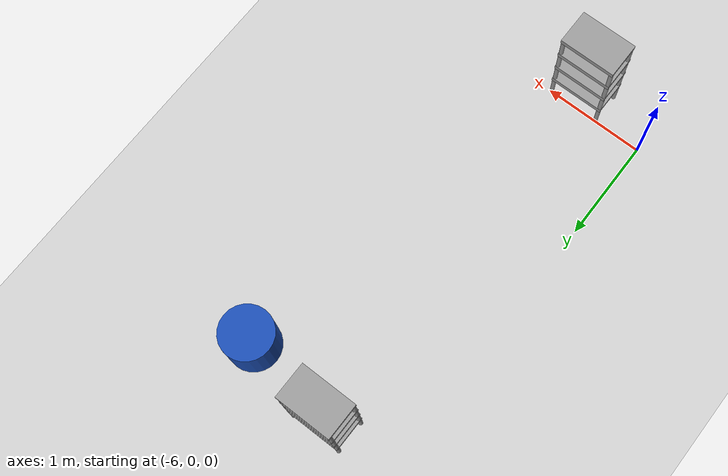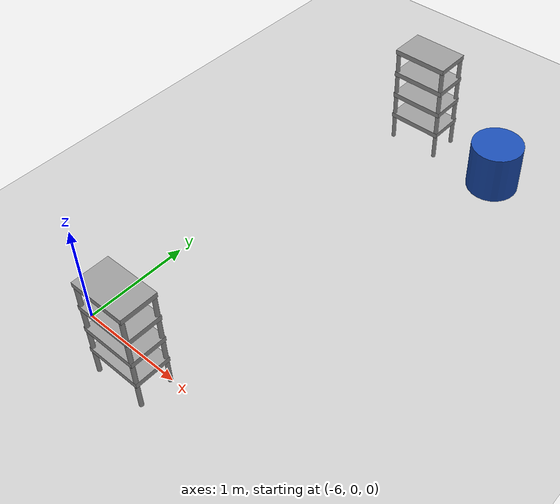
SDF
<sdf version="1.7">
 <world name="default">
  <model name="ground_plane">
   <static>1</static>
   <link name="link">
    <collision name="collision">
     <geometry><plane><normal>0 0 1</normal><size>100 100</size></plane></geometry>
     <surface>
      <contact><collide_bitmask>65535</collide_bitmask></contact>
      <friction><ode><mu>100</mu><mu2>50</mu2></ode></friction>
     </surface>
    </collision>
    <visual name="visual">
     <cast_shadows>0</cast_shadows>
     <geometry><plane><normal>0 0 1</normal><size>100 100</size></plane></geometry>
     <material>
      <script><uri>file://media/materials/scripts/gazebo.material</uri><name>Gazebo/Grey</name></script>
     </material>
    </visual>
   </link>
  </model>
  <model name="chair2_clone_2">
   <link name="link">
    <inertial>
     <mass>1</mass>
     <inertia><ixx>0.145833</ixx><ixy>0</ixy><ixz>0</ixz><iyy>0.145833</iyy><iyz>0</iyz><izz>0.125</izz></inertia>
    </inertial>
    <visual name="visual">
     <geometry><cylinder><radius>0.25</radius><length>0.5</length></cylinder></geometry>
     <material>
      <script><name>Gazebo/Grey</name><uri>file://media/materials/scripts/gazebo.material</uri></script>
      <shader type="pixel"><normal_map>__default__</normal_map></shader>
      <ambient>0.1 0.3 0.7 1</ambient>
      <diffuse>0.7 0.7 0.7 1</diffuse>
      <specular>0.01 0.01 0.01 1</specular>
      <emissive>0 0 0 1</emissive>
     </material>
    </visual>
    <collision name="collision">
     <geometry><cylinder><radius>0.25</radius><length>0.5</length></cylinder></geometry>
     <surface>
      <friction>
       <ode><mu>1</mu><mu2>1</mu2><fdir1>0 0 0</fdir1><slip1>0</slip1><slip2>0</slip2></ode>
       <torsional>
        <coefficient>1</coefficient>
        <patch_radius>0</patch_radius>
        <surface_radius>0</surface_radius>
        <use_patch_radius>1</use_patch_radius>
        <ode><slip>0</slip></ode>
       </torsional>
      </friction>
      <bounce><restitution_coefficient>0</restitution_coefficient><threshold>1e+06</threshold></bounce>
      <contact>
       <collide_without_contact>0</collide_without_contact>
       <collide_without_contact_bitmask>1</collide_without_contact_bitmask>
       <collide_bitmask>1</collide_bitmask>
       <ode>
        <soft_cfm>0</soft_cfm>
        <soft_erp>0.2</soft_erp>
        <kp>1e+13</kp>
        <kd>1</kd>
        <max_vel>0.01</max_vel>
        <min_depth>0</min_depth>
       </ode>
       <bullet>
        <split_impulse>1</split_impulse>
        <split_impulse_penetration_threshold>-0.01</split_impulse_penetration_threshold>
        <soft_cfm>0</soft_cfm>
        <soft_erp>0.2</soft_erp>
        <kp>1e+13</kp>
        <kd>1</kd>
       </bullet>
      </contact>
     </surface>
    </collision>
   </link>
   <static>1</static>
   <pose>-4.35825 3.56614 0.25 0 -0 0</pose>
  </model>
  <model name="Shelf">
   <link name="link">
    <inertial>
     <mass>1</mass>
     <inertia><ixx>0.145833</ixx><ixy>0</ixy><ixz>0</ixz><iyy>0.145833</iyy><iyz>0</iyz><izz>0.125</izz></inertia>
    </inertial>
    <visual name="visual">
     <geometry><cylinder><radius>0.02</radius><length>1</length></cylinder></geometry>
     <material>
      <script><name>Gazebo/Grey</name><uri>file://media/materials/scripts/gazebo.material</uri></script>
      <shader type="pixel"><normal_map>__default__</normal_map></shader>
      <ambient>0.3 0.3 0.3 1</ambient>
      <diffuse>0 0 0 1</diffuse>
      <specular>0.01 0.01 0.01 1</specular>
      <emissive>0 0 0 1</emissive>
     </material>
    </visual>
    <collision name="collision">
     <geometry><cylinder><radius>0.02</radius><length>1</length></cylinder></geometry>
     <surface>
      <friction>
       <ode><mu>1</mu><mu2>1</mu2><fdir1>0 0 0</fdir1><slip1>0</slip1><slip2>0</slip2></ode>
       <torsional>
        <coefficient>1</coefficient>
        <patch_radius>0</patch_radius>
        <surface_radius>0</surface_radius>
        <use_patch_radius>1</use_patch_radius>
        <ode><slip>0</slip></ode>
       </torsional>
      </friction>
      <bounce><restitution_coefficient>0</restitution_coefficient><threshold>1e+06</threshold></bounce>
      <contact>
       <collide_without_contact>0</collide_without_contact>
       <collide_without_contact_bitmask>1</collide_without_contact_bitmask>
       <collide_bitmask>1</collide_bitmask>
       <ode>
        <soft_cfm>0</soft_cfm>
        <soft_erp>0.2</soft_erp>
        <kp>1e+13</kp>
        <kd>1</kd>
        <max_vel>0.01</max_vel>
        <min_depth>0</min_depth>
       </ode>
       <bullet>
        <split_impulse>1</split_impulse>
        <split_impulse_penetration_threshold>-0.01</split_impulse_penetration_threshold>
        <soft_cfm>0</soft_cfm>
        <soft_erp>0.2</soft_erp>
        <kp>1e+13</kp>
        <kd>1</kd>
       </bullet>
      </contact>
     </surface>
    </collision>
   </link>
   <link name="link_25">
    <inertial>
     <mass>1</mass>
     <inertia>
      <ixx>0.166667</ixx>
      <ixy>0</ixy>
      <ixz>0</ixz>
      <iyy>0.166667</iyy>
      <iyz>0</iyz>
      <izz>0.166667</izz>
     </inertia>
    </inertial>
    <pose>0.25 0.15 0.525 0 -0 0</pose>
    <visual name="visual">
     <geometry><box><size>0.54 0.34 0.05</size></box></geometry>
     <material>
      <lighting>1</lighting>
      <script><uri>file://media/materials/scripts/gazebo.material</uri><name>Gazebo/Grey</name></script>
      <shader type="pixel"><normal_map>__default__</normal_map></shader>
      <ambient>0.3 0.3 0.3 1</ambient>
      <diffuse>0 0 0 1</diffuse>
      <specular>0.01 0.01 0.01 1</specular>
      <emissive>0 0 0 1</emissive>
     </material>
    </visual>
    <collision name="collision">
     <geometry><box><size>0.54 0.34 0.05</size></box></geometry>
     <surface>
      <friction>
       <ode><mu>1</mu><mu2>1</mu2><fdir1>0 0 0</fdir1><slip1>0</slip1><slip2>0</slip2></ode>
       <torsional>
        <coefficient>1</coefficient>
        <patch_radius>0</patch_radius>
        <surface_radius>0</surface_radius>
        <use_patch_radius>1</use_patch_radius>
        <ode><slip>0</slip></ode>
       </torsional>
      </friction>
      <bounce><restitution_coefficient>0</restitution_coefficient><threshold>1e+06</threshold></bounce>
      <contact>
       <collide_without_contact>0</collide_without_contact>
       <collide_without_contact_bitmask>1</collide_without_contact_bitmask>
       <collide_bitmask>1</collide_bitmask>
       <ode>
        <soft_cfm>0</soft_cfm>
        <soft_erp>0.2</soft_erp>
        <kp>1e+13</kp>
        <kd>1</kd>
        <max_vel>0.01</max_vel>
        <min_depth>0</min_depth>
       </ode>
       <bullet>
        <split_impulse>1</split_impulse>
        <split_impulse_penetration_threshold>-0.01</split_impulse_penetration_threshold>
        <soft_cfm>0</soft_cfm>
        <soft_erp>0.2</soft_erp>
        <kp>1e+13</kp>
        <kd>1</kd>
       </bullet>
      </contact>
     </surface>
    </collision>
   </link>
   <link name="link_25_clone">
    <inertial>
     <mass>1</mass>
     <inertia>
      <ixx>0.166667</ixx>
      <ixy>0</ixy>
      <ixz>0</ixz>
      <iyy>0.166667</iyy>
      <iyz>0</iyz>
      <izz>0.166667</izz>
     </inertia>
    </inertial>
    <pose>0.25 0.15 0.275 0 -0 0</pose>
    <visual name="visual">
     <geometry><box><size>0.54 0.34 0.05</size></box></geometry>
     <material>
      <lighting>1</lighting>
      <script><uri>file://media/materials/scripts/gazebo.material</uri><name>Gazebo/Grey</name></script>
      <shader type="pixel"><normal_map>__default__</normal_map></shader>
      <ambient>0.3 0.3 0.3 1</ambient>
      <diffuse>0 0 0 1</diffuse>
      <specular>0.01 0.01 0.01 1</specular>
      <emissive>0 0 0 1</emissive>
     </material>
    </visual>
    <collision name="collision">
     <geometry><box><size>0.54 0.34 0.05</size></box></geometry>
     <surface>
      <friction>
       <ode><mu>1</mu><mu2>1</mu2><fdir1>0 0 0</fdir1><slip1>0</slip1><slip2>0</slip2></ode>
       <torsional>
        <coefficient>1</coefficient>
        <patch_radius>0</patch_radius>
        <surface_radius>0</surface_radius>
        <use_patch_radius>1</use_patch_radius>
        <ode><slip>0</slip></ode>
       </torsional>
      </friction>
      <bounce><restitution_coefficient>0</restitution_coefficient><threshold>1e+06</threshold></bounce>
      <contact>
       <collide_without_contact>0</collide_without_contact>
       <collide_without_contact_bitmask>1</collide_without_contact_bitmask>
       <collide_bitmask>1</collide_bitmask>
       <ode>
        <soft_cfm>0</soft_cfm>
        <soft_erp>0.2</soft_erp>
        <kp>1e+13</kp>
        <kd>1</kd>
        <max_vel>0.01</max_vel>
        <min_depth>0</min_depth>
       </ode>
       <bullet>
        <split_impulse>1</split_impulse>
        <split_impulse_penetration_threshold>-0.01</split_impulse_penetration_threshold>
        <soft_cfm>0</soft_cfm>
        <soft_erp>0.2</soft_erp>
        <kp>1e+13</kp>
        <kd>1</kd>
       </bullet>
      </contact>
     </surface>
    </collision>
   </link>
   <link name="link_25_clone_0">
    <inertial>
     <mass>1</mass>
     <inertia>
      <ixx>0.166667</ixx>
      <ixy>0</ixy>
      <ixz>0</ixz>
      <iyy>0.166667</iyy>
      <iyz>0</iyz>
      <izz>0.166667</izz>
     </inertia>
    </inertial>
    <pose>0.25 0.15 -0.225 0 -0 0</pose>
    <visual name="visual">
     <geometry><box><size>0.54 0.34 0.05</size></box></geometry>
     <material>
      <lighting>1</lighting>
      <script><uri>file://media/materials/scripts/gazebo.material</uri><name>Gazebo/Grey</name></script>
      <shader type="pixel"><normal_map>__default__</normal_map></shader>
      <ambient>0.3 0.3 0.3 1</ambient>
      <diffuse>0 0 0 1</diffuse>
      <specular>0.01 0.01 0.01 1</specular>
      <emissive>0 0 0 1</emissive>
     </material>
    </visual>
    <collision name="collision">
     <geometry><box><size>0.54 0.34 0.05</size></box></geometry>
     <surface>
      <friction>
       <ode><mu>1</mu><mu2>1</mu2><fdir1>0 0 0</fdir1><slip1>0</slip1><slip2>0</slip2></ode>
       <torsional>
        <coefficient>1</coefficient>
        <patch_radius>0</patch_radius>
        <surface_radius>0</surface_radius>
        <use_patch_radius>1</use_patch_radius>
        <ode><slip>0</slip></ode>
       </torsional>
      </friction>
      <bounce><restitution_coefficient>0</restitution_coefficient><threshold>1e+06</threshold></bounce>
      <contact>
       <collide_without_contact>0</collide_without_contact>
       <collide_without_contact_bitmask>1</collide_without_contact_bitmask>
       <collide_bitmask>1</collide_bitmask>
       <ode>
        <soft_cfm>0</soft_cfm>
        <soft_erp>0.2</soft_erp>
        <kp>1e+13</kp>
        <kd>1</kd>
        <max_vel>0.01</max_vel>
        <min_depth>0</min_depth>
       </ode>
       <bullet>
        <split_impulse>1</split_impulse>
        <split_impulse_penetration_threshold>-0.01</split_impulse_penetration_threshold>
        <soft_cfm>0</soft_cfm>
        <soft_erp>0.2</soft_erp>
        <kp>1e+13</kp>
        <kd>1</kd>
       </bullet>
      </contact>
     </surface>
    </collision>
   </link>
   <link name="link_25_clone_1">
    <inertial>
     <mass>1</mass>
     <inertia>
      <ixx>0.166667</ixx>
      <ixy>0</ixy>
      <ixz>0</ixz>
      <iyy>0.166667</iyy>
      <iyz>0</iyz>
      <izz>0.166667</izz>
     </inertia>
    </inertial>
    <pose>0.25 0.15 0.025 0 -0 0</pose>
    <visual name="visual">
     <geometry><box><size>0.54 0.34 0.05</size></box></geometry>
     <material>
      <lighting>1</lighting>
      <script><uri>file://media/materials/scripts/gazebo.material</uri><name>Gazebo/Grey</name></script>
      <shader type="pixel"><normal_map>__default__</normal_map></shader>
      <ambient>0.3 0.3 0.3 1</ambient>
      <diffuse>0 0 0 1</diffuse>
      <specular>0.01 0.01 0.01 1</specular>
      <emissive>0 0 0 1</emissive>
     </material>
    </visual>
    <collision name="collision">
     <geometry><box><size>0.54 0.34 0.05</size></box></geometry>
     <surface>
      <friction>
       <ode><mu>1</mu><mu2>1</mu2><fdir1>0 0 0</fdir1><slip1>0</slip1><slip2>0</slip2></ode>
       <torsional>
        <coefficient>1</coefficient>
        <patch_radius>0</patch_radius>
        <surface_radius>0</surface_radius>
        <use_patch_radius>1</use_patch_radius>
        <ode><slip>0</slip></ode>
       </torsional>
      </friction>
      <bounce><restitution_coefficient>0</restitution_coefficient><threshold>1e+06</threshold></bounce>
      <contact>
       <collide_without_contact>0</collide_without_contact>
       <collide_without_contact_bitmask>1</collide_without_contact_bitmask>
       <collide_bitmask>1</collide_bitmask>
       <ode>
        <soft_cfm>0</soft_cfm>
        <soft_erp>0.2</soft_erp>
        <kp>1e+13</kp>
        <kd>1</kd>
        <max_vel>0.01</max_vel>
        <min_depth>0</min_depth>
       </ode>
       <bullet>
        <split_impulse>1</split_impulse>
        <split_impulse_penetration_threshold>-0.01</split_impulse_penetration_threshold>
        <soft_cfm>0</soft_cfm>
        <soft_erp>0.2</soft_erp>
        <kp>1e+13</kp>
        <kd>1</kd>
       </bullet>
      </contact>
     </surface>
    </collision>
   </link>
   <link name="link_clone">
    <inertial>
     <mass>1</mass>
     <inertia><ixx>0.145833</ixx><ixy>0</ixy><ixz>0</ixz><iyy>0.145833</iyy><iyz>0</iyz><izz>0.125</izz></inertia>
    </inertial>
    <pose>0.5 0.3 0 0 -0 0</pose>
    <visual name="visual">
     <geometry><cylinder><radius>0.02</radius><length>1</length></cylinder></geometry>
     <material>
      <script><name>Gazebo/Grey</name><uri>file://media/materials/scripts/gazebo.material</uri></script>
      <shader type="pixel"><normal_map>__default__</normal_map></shader>
      <ambient>0.3 0.3 0.3 1</ambient>
      <diffuse>0 0 0 1</diffuse>
      <specular>0.01 0.01 0.01 1</specular>
      <emissive>0 0 0 1</emissive>
     </material>
    </visual>
    <collision name="collision">
     <geometry><cylinder><radius>0.02</radius><length>1</length></cylinder></geometry>
     <surface>
      <friction>
       <ode><mu>1</mu><mu2>1</mu2><fdir1>0 0 0</fdir1><slip1>0</slip1><slip2>0</slip2></ode>
       <torsional>
        <coefficient>1</coefficient>
        <patch_radius>0</patch_radius>
        <surface_radius>0</surface_radius>
        <use_patch_radius>1</use_patch_radius>
        <ode><slip>0</slip></ode>
       </torsional>
      </friction>
      <bounce><restitution_coefficient>0</restitution_coefficient><threshold>1e+06</threshold></bounce>
      <contact>
       <collide_without_contact>0</collide_without_contact>
       <collide_without_contact_bitmask>1</collide_without_contact_bitmask>
       <collide_bitmask>1</collide_bitmask>
       <ode>
        <soft_cfm>0</soft_cfm>
        <soft_erp>0.2</soft_erp>
        <kp>1e+13</kp>
        <kd>1</kd>
        <max_vel>0.01</max_vel>
        <min_depth>0</min_depth>
       </ode>
       <bullet>
        <split_impulse>1</split_impulse>
        <split_impulse_penetration_threshold>-0.01</split_impulse_penetration_threshold>
        <soft_cfm>0</soft_cfm>
        <soft_erp>0.2</soft_erp>
        <kp>1e+13</kp>
        <kd>1</kd>
       </bullet>
      </contact>
     </surface>
    </collision>
   </link>
   <link name="link_clone_0">
    <inertial>
     <mass>1</mass>
     <inertia><ixx>0.145833</ixx><ixy>0</ixy><ixz>0</ixz><iyy>0.145833</iyy><iyz>0</iyz><izz>0.125</izz></inertia>
    </inertial>
    <pose>0 0.3 0 0 -0 0</pose>
    <visual name="visual">
     <geometry><cylinder><radius>0.02</radius><length>1</length></cylinder></geometry>
     <material>
      <script><name>Gazebo/Grey</name><uri>file://media/materials/scripts/gazebo.material</uri></script>
      <shader type="pixel"><normal_map>__default__</normal_map></shader>
      <ambient>0.3 0.3 0.3 1</ambient>
      <diffuse>0 0 0 1</diffuse>
      <specular>0.01 0.01 0.01 1</specular>
      <emissive>0 0 0 1</emissive>
     </material>
    </visual>
    <collision name="collision">
     <geometry><cylinder><radius>0.02</radius><length>1</length></cylinder></geometry>
     <surface>
      <friction>
       <ode><mu>1</mu><mu2>1</mu2><fdir1>0 0 0</fdir1><slip1>0</slip1><slip2>0</slip2></ode>
       <torsional>
        <coefficient>1</coefficient>
        <patch_radius>0</patch_radius>
        <surface_radius>0</surface_radius>
        <use_patch_radius>1</use_patch_radius>
        <ode><slip>0</slip></ode>
       </torsional>
      </friction>
      <bounce><restitution_coefficient>0</restitution_coefficient><threshold>1e+06</threshold></bounce>
      <contact>
       <collide_without_contact>0</collide_without_contact>
       <collide_without_contact_bitmask>1</collide_without_contact_bitmask>
       <collide_bitmask>1</collide_bitmask>
       <ode>
        <soft_cfm>0</soft_cfm>
        <soft_erp>0.2</soft_erp>
        <kp>1e+13</kp>
        <kd>1</kd>
        <max_vel>0.01</max_vel>
        <min_depth>0</min_depth>
       </ode>
       <bullet>
        <split_impulse>1</split_impulse>
        <split_impulse_penetration_threshold>-0.01</split_impulse_penetration_threshold>
        <soft_cfm>0</soft_cfm>
        <soft_erp>0.2</soft_erp>
        <kp>1e+13</kp>
        <kd>1</kd>
       </bullet>
      </contact>
     </surface>
    </collision>
   </link>
   <link name="link_clone_1">
    <inertial>
     <mass>1</mass>
     <inertia><ixx>0.145833</ixx><ixy>0</ixy><ixz>0</ixz><iyy>0.145833</iyy><iyz>0</iyz><izz>0.125</izz></inertia>
    </inertial>
    <pose>0.5 0 0 0 -0 0</pose>
    <visual name="visual">
     <geometry><cylinder><radius>0.02</radius><length>1</length></cylinder></geometry>
     <material>
      <script><name>Gazebo/Grey</name><uri>file://media/materials/scripts/gazebo.material</uri></script>
      <shader type="pixel"><normal_map>__default__</normal_map></shader>
      <ambient>0.3 0.3 0.3 1</ambient>
      <diffuse>0 0 0 1</diffuse>
      <specular>0.01 0.01 0.01 1</specular>
      <emissive>0 0 0 1</emissive>
     </material>
    </visual>
    <collision name="collision">
     <geometry><cylinder><radius>0.02</radius><length>1</length></cylinder></geometry>
     <surface>
      <friction>
       <ode><mu>1</mu><mu2>1</mu2><fdir1>0 0 0</fdir1><slip1>0</slip1><slip2>0</slip2></ode>
       <torsional>
        <coefficient>1</coefficient>
        <patch_radius>0</patch_radius>
        <surface_radius>0</surface_radius>
        <use_patch_radius>1</use_patch_radius>
        <ode><slip>0</slip></ode>
       </torsional>
      </friction>
      <bounce><restitution_coefficient>0</restitution_coefficient><threshold>1e+06</threshold></bounce>
      <contact>
       <collide_without_contact>0</collide_without_contact>
       <collide_without_contact_bitmask>1</collide_without_contact_bitmask>
       <collide_bitmask>1</collide_bitmask>
       <ode>
        <soft_cfm>0</soft_cfm>
        <soft_erp>0.2</soft_erp>
        <kp>1e+13</kp>
        <kd>1</kd>
        <max_vel>0.01</max_vel>
        <min_depth>0</min_depth>
       </ode>
       <bullet>
        <split_impulse>1</split_impulse>
        <split_impulse_penetration_threshold>-0.01</split_impulse_penetration_threshold>
        <soft_cfm>0</soft_cfm>
        <soft_erp>0.2</soft_erp>
        <kp>1e+13</kp>
        <kd>1</kd>
       </bullet>
      </contact>
     </surface>
    </collision>
   </link>
   <static>1</static>
   <pose>-5.51831 -0.308607 0.5 0 -0 0</pose>
  </model>
  <model name="Shelf_clone">
   <link name="link">
    <inertial>
     <mass>1</mass>
     <inertia><ixx>0.145833</ixx><ixy>0</ixy><ixz>0</ixz><iyy>0.145833</iyy><iyz>0</iyz><izz>0.125</izz></inertia>
    </inertial>
    <visual name="visual">
     <geometry><cylinder><radius>0.02</radius><length>1</length></cylinder></geometry>
     <material>
      <script><name>Gazebo/Grey</name><uri>file://media/materials/scripts/gazebo.material</uri></script>
      <shader type="pixel"><normal_map>__default__</normal_map></shader>
      <ambient>0.3 0.3 0.3 1</ambient>
      <diffuse>0 0 0 1</diffuse>
      <specular>0.01 0.01 0.01 1</specular>
      <emissive>0 0 0 1</emissive>
     </material>
    </visual>
    <collision name="collision">
     <geometry><cylinder><radius>0.02</radius><length>1</length></cylinder></geometry>
     <surface>
      <friction>
       <ode><mu>1</mu><mu2>1</mu2><fdir1>0 0 0</fdir1><slip1>0</slip1><slip2>0</slip2></ode>
       <torsional>
        <coefficient>1</coefficient>
        <patch_radius>0</patch_radius>
        <surface_radius>0</surface_radius>
        <use_patch_radius>1</use_patch_radius>
        <ode><slip>0</slip></ode>
       </torsional>
      </friction>
      <bounce><restitution_coefficient>0</restitution_coefficient><threshold>1e+06</threshold></bounce>
      <contact>
       <collide_without_contact>0</collide_without_contact>
       <collide_without_contact_bitmask>1</collide_without_contact_bitmask>
       <collide_bitmask>1</collide_bitmask>
       <ode>
        <soft_cfm>0</soft_cfm>
        <soft_erp>0.2</soft_erp>
        <kp>1e+13</kp>
        <kd>1</kd>
        <max_vel>0.01</max_vel>
        <min_depth>0</min_depth>
       </ode>
       <bullet>
        <split_impulse>1</split_impulse>
        <split_impulse_penetration_threshold>-0.01</split_impulse_penetration_threshold>
        <soft_cfm>0</soft_cfm>
        <soft_erp>0.2</soft_erp>
        <kp>1e+13</kp>
        <kd>1</kd>
       </bullet>
      </contact>
     </surface>
    </collision>
   </link>
   <link name="link_25">
    <inertial>
     <mass>1</mass>
     <inertia>
      <ixx>0.166667</ixx>
      <ixy>0</ixy>
      <ixz>0</ixz>
      <iyy>0.166667</iyy>
      <iyz>0</iyz>
      <izz>0.166667</izz>
     </inertia>
    </inertial>
    <pose>0.25 0.15 0.525 0 -0 0</pose>
    <visual name="visual">
     <geometry><box><size>0.54 0.34 0.05</size></box></geometry>
     <material>
      <lighting>1</lighting>
      <script><uri>file://media/materials/scripts/gazebo.material</uri><name>Gazebo/Grey</name></script>
      <shader type="pixel"><normal_map>__default__</normal_map></shader>
      <ambient>0.3 0.3 0.3 1</ambient>
      <diffuse>0 0 0 1</diffuse>
      <specular>0.01 0.01 0.01 1</specular>
      <emissive>0 0 0 1</emissive>
     </material>
    </visual>
    <collision name="collision">
     <geometry><box><size>0.54 0.34 0.05</size></box></geometry>
     <surface>
      <friction>
       <ode><mu>1</mu><mu2>1</mu2><fdir1>0 0 0</fdir1><slip1>0</slip1><slip2>0</slip2></ode>
       <torsional>
        <coefficient>1</coefficient>
        <patch_radius>0</patch_radius>
        <surface_radius>0</surface_radius>
        <use_patch_radius>1</use_patch_radius>
        <ode><slip>0</slip></ode>
       </torsional>
      </friction>
      <bounce><restitution_coefficient>0</restitution_coefficient><threshold>1e+06</threshold></bounce>
      <contact>
       <collide_without_contact>0</collide_without_contact>
       <collide_without_contact_bitmask>1</collide_without_contact_bitmask>
       <collide_bitmask>1</collide_bitmask>
       <ode>
        <soft_cfm>0</soft_cfm>
        <soft_erp>0.2</soft_erp>
        <kp>1e+13</kp>
        <kd>1</kd>
        <max_vel>0.01</max_vel>
        <min_depth>0</min_depth>
       </ode>
       <bullet>
        <split_impulse>1</split_impulse>
        <split_impulse_penetration_threshold>-0.01</split_impulse_penetration_threshold>
        <soft_cfm>0</soft_cfm>
        <soft_erp>0.2</soft_erp>
        <kp>1e+13</kp>
        <kd>1</kd>
       </bullet>
      </contact>
     </surface>
    </collision>
   </link>
   <link name="link_25_clone">
    <inertial>
     <mass>1</mass>
     <inertia>
      <ixx>0.166667</ixx>
      <ixy>0</ixy>
      <ixz>0</ixz>
      <iyy>0.166667</iyy>
      <iyz>0</iyz>
      <izz>0.166667</izz>
     </inertia>
    </inertial>
    <pose>0.25 0.15 0.275 0 -0 0</pose>
    <visual name="visual">
     <geometry><box><size>0.54 0.34 0.05</size></box></geometry>
     <material>
      <lighting>1</lighting>
      <script><uri>file://media/materials/scripts/gazebo.material</uri><name>Gazebo/Grey</name></script>
      <shader type="pixel"><normal_map>__default__</normal_map></shader>
      <ambient>0.3 0.3 0.3 1</ambient>
      <diffuse>0 0 0 1</diffuse>
      <specular>0.01 0.01 0.01 1</specular>
      <emissive>0 0 0 1</emissive>
     </material>
    </visual>
    <collision name="collision">
     <geometry><box><size>0.54 0.34 0.05</size></box></geometry>
     <surface>
      <friction>
       <ode><mu>1</mu><mu2>1</mu2><fdir1>0 0 0</fdir1><slip1>0</slip1><slip2>0</slip2></ode>
       <torsional>
        <coefficient>1</coefficient>
        <patch_radius>0</patch_radius>
        <surface_radius>0</surface_radius>
        <use_patch_radius>1</use_patch_radius>
        <ode><slip>0</slip></ode>
       </torsional>
      </friction>
      <bounce><restitution_coefficient>0</restitution_coefficient><threshold>1e+06</threshold></bounce>
      <contact>
       <collide_without_contact>0</collide_without_contact>
       <collide_without_contact_bitmask>1</collide_without_contact_bitmask>
       <collide_bitmask>1</collide_bitmask>
       <ode>
        <soft_cfm>0</soft_cfm>
        <soft_erp>0.2</soft_erp>
        <kp>1e+13</kp>
        <kd>1</kd>
        <max_vel>0.01</max_vel>
        <min_depth>0</min_depth>
       </ode>
       <bullet>
        <split_impulse>1</split_impulse>
        <split_impulse_penetration_threshold>-0.01</split_impulse_penetration_threshold>
        <soft_cfm>0</soft_cfm>
        <soft_erp>0.2</soft_erp>
        <kp>1e+13</kp>
        <kd>1</kd>
       </bullet>
      </contact>
     </surface>
    </collision>
   </link>
   <link name="link_25_clone_0">
    <inertial>
     <mass>1</mass>
     <inertia>
      <ixx>0.166667</ixx>
      <ixy>0</ixy>
      <ixz>0</ixz>
      <iyy>0.166667</iyy>
      <iyz>0</iyz>
      <izz>0.166667</izz>
     </inertia>
    </inertial>
    <pose>0.25 0.15 -0.225 0 -0 0</pose>
    <visual name="visual">
     <geometry><box><size>0.54 0.34 0.05</size></box></geometry>
     <material>
      <lighting>1</lighting>
      <script><uri>file://media/materials/scripts/gazebo.material</uri><name>Gazebo/Grey</name></script>
      <shader type="pixel"><normal_map>__default__</normal_map></shader>
      <ambient>0.3 0.3 0.3 1</ambient>
      <diffuse>0 0 0 1</diffuse>
      <specular>0.01 0.01 0.01 1</specular>
      <emissive>0 0 0 1</emissive>
     </material>
    </visual>
    <collision name="collision">
     <geometry><box><size>0.54 0.34 0.05</size></box></geometry>
     <surface>
      <friction>
       <ode><mu>1</mu><mu2>1</mu2><fdir1>0 0 0</fdir1><slip1>0</slip1><slip2>0</slip2></ode>
       <torsional>
        <coefficient>1</coefficient>
        <patch_radius>0</patch_radius>
        <surface_radius>0</surface_radius>
        <use_patch_radius>1</use_patch_radius>
        <ode><slip>0</slip></ode>
       </torsional>
      </friction>
      <bounce><restitution_coefficient>0</restitution_coefficient><threshold>1e+06</threshold></bounce>
      <contact>
       <collide_without_contact>0</collide_without_contact>
       <collide_without_contact_bitmask>1</collide_without_contact_bitmask>
       <collide_bitmask>1</collide_bitmask>
       <ode>
        <soft_cfm>0</soft_cfm>
        <soft_erp>0.2</soft_erp>
        <kp>1e+13</kp>
        <kd>1</kd>
        <max_vel>0.01</max_vel>
        <min_depth>0</min_depth>
       </ode>
       <bullet>
        <split_impulse>1</split_impulse>
        <split_impulse_penetration_threshold>-0.01</split_impulse_penetration_threshold>
        <soft_cfm>0</soft_cfm>
        <soft_erp>0.2</soft_erp>
        <kp>1e+13</kp>
        <kd>1</kd>
       </bullet>
      </contact>
     </surface>
    </collision>
   </link>
   <link name="link_25_clone_1">
    <inertial>
     <mass>1</mass>
     <inertia>
      <ixx>0.166667</ixx>
      <ixy>0</ixy>
      <ixz>0</ixz>
      <iyy>0.166667</iyy>
      <iyz>0</iyz>
      <izz>0.166667</izz>
     </inertia>
    </inertial>
    <pose>0.25 0.15 0.025 0 -0 0</pose>
    <visual name="visual">
     <geometry><box><size>0.54 0.34 0.05</size></box></geometry>
     <material>
      <lighting>1</lighting>
      <script><uri>file://media/materials/scripts/gazebo.material</uri><name>Gazebo/Grey</name></script>
      <shader type="pixel"><normal_map>__default__</normal_map></shader>
      <ambient>0.3 0.3 0.3 1</ambient>
      <diffuse>0 0 0 1</diffuse>
      <specular>0.01 0.01 0.01 1</specular>
      <emissive>0 0 0 1</emissive>
     </material>
    </visual>
    <collision name="collision">
     <geometry><box><size>0.54 0.34 0.05</size></box></geometry>
     <surface>
      <friction>
       <ode><mu>1</mu><mu2>1</mu2><fdir1>0 0 0</fdir1><slip1>0</slip1><slip2>0</slip2></ode>
       <torsional>
        <coefficient>1</coefficient>
        <patch_radius>0</patch_radius>
        <surface_radius>0</surface_radius>
        <use_patch_radius>1</use_patch_radius>
        <ode><slip>0</slip></ode>
       </torsional>
      </friction>
      <bounce><restitution_coefficient>0</restitution_coefficient><threshold>1e+06</threshold></bounce>
      <contact>
       <collide_without_contact>0</collide_without_contact>
       <collide_without_contact_bitmask>1</collide_without_contact_bitmask>
       <collide_bitmask>1</collide_bitmask>
       <ode>
        <soft_cfm>0</soft_cfm>
        <soft_erp>0.2</soft_erp>
        <kp>1e+13</kp>
        <kd>1</kd>
        <max_vel>0.01</max_vel>
        <min_depth>0</min_depth>
       </ode>
       <bullet>
        <split_impulse>1</split_impulse>
        <split_impulse_penetration_threshold>-0.01</split_impulse_penetration_threshold>
        <soft_cfm>0</soft_cfm>
        <soft_erp>0.2</soft_erp>
        <kp>1e+13</kp>
        <kd>1</kd>
       </bullet>
      </contact>
     </surface>
    </collision>
   </link>
   <link name="link_clone">
    <inertial>
     <mass>1</mass>
     <inertia><ixx>0.145833</ixx><ixy>0</ixy><ixz>0</ixz><iyy>0.145833</iyy><iyz>0</iyz><izz>0.125</izz></inertia>
    </inertial>
    <pose>0.5 0.3 0 0 -0 0</pose>
    <visual name="visual">
     <geometry><cylinder><radius>0.02</radius><length>1</length></cylinder></geometry>
     <material>
      <script><name>Gazebo/Grey</name><uri>file://media/materials/scripts/gazebo.material</uri></script>
      <shader type="pixel"><normal_map>__default__</normal_map></shader>
      <ambient>0.3 0.3 0.3 1</ambient>
      <diffuse>0 0 0 1</diffuse>
      <specular>0.01 0.01 0.01 1</specular>
      <emissive>0 0 0 1</emissive>
     </material>
    </visual>
    <collision name="collision">
     <geometry><cylinder><radius>0.02</radius><length>1</length></cylinder></geometry>
     <surface>
      <friction>
       <ode><mu>1</mu><mu2>1</mu2><fdir1>0 0 0</fdir1><slip1>0</slip1><slip2>0</slip2></ode>
       <torsional>
        <coefficient>1</coefficient>
        <patch_radius>0</patch_radius>
        <surface_radius>0</surface_radius>
        <use_patch_radius>1</use_patch_radius>
        <ode><slip>0</slip></ode>
       </torsional>
      </friction>
      <bounce><restitution_coefficient>0</restitution_coefficient><threshold>1e+06</threshold></bounce>
      <contact>
       <collide_without_contact>0</collide_without_contact>
       <collide_without_contact_bitmask>1</collide_without_contact_bitmask>
       <collide_bitmask>1</collide_bitmask>
       <ode>
        <soft_cfm>0</soft_cfm>
        <soft_erp>0.2</soft_erp>
        <kp>1e+13</kp>
        <kd>1</kd>
        <max_vel>0.01</max_vel>
        <min_depth>0</min_depth>
       </ode>
       <bullet>
        <split_impulse>1</split_impulse>
        <split_impulse_penetration_threshold>-0.01</split_impulse_penetration_threshold>
        <soft_cfm>0</soft_cfm>
        <soft_erp>0.2</soft_erp>
        <kp>1e+13</kp>
        <kd>1</kd>
       </bullet>
      </contact>
     </surface>
    </collision>
   </link>
   <link name="link_clone_0">
    <inertial>
     <mass>1</mass>
     <inertia><ixx>0.145833</ixx><ixy>0</ixy><ixz>0</ixz><iyy>0.145833</iyy><iyz>0</iyz><izz>0.125</izz></inertia>
    </inertial>
    <pose>0 0.3 0 0 -0 0</pose>
    <visual name="visual">
     <geometry><cylinder><radius>0.02</radius><length>1</length></cylinder></geometry>
     <material>
      <script><name>Gazebo/Grey</name><uri>file://media/materials/scripts/gazebo.material</uri></script>
      <shader type="pixel"><normal_map>__default__</normal_map></shader>
      <ambient>0.3 0.3 0.3 1</ambient>
      <diffuse>0 0 0 1</diffuse>
      <specular>0.01 0.01 0.01 1</specular>
      <emissive>0 0 0 1</emissive>
     </material>
    </visual>
    <collision name="collision">
     <geometry><cylinder><radius>0.02</radius><length>1</length></cylinder></geometry>
     <surface>
      <friction>
       <ode><mu>1</mu><mu2>1</mu2><fdir1>0 0 0</fdir1><slip1>0</slip1><slip2>0</slip2></ode>
       <torsional>
        <coefficient>1</coefficient>
        <patch_radius>0</patch_radius>
        <surface_radius>0</surface_radius>
        <use_patch_radius>1</use_patch_radius>
        <ode><slip>0</slip></ode>
       </torsional>
      </friction>
      <bounce><restitution_coefficient>0</restitution_coefficient><threshold>1e+06</threshold></bounce>
      <contact>
       <collide_without_contact>0</collide_without_contact>
       <collide_without_contact_bitmask>1</collide_without_contact_bitmask>
       <collide_bitmask>1</collide_bitmask>
       <ode>
        <soft_cfm>0</soft_cfm>
        <soft_erp>0.2</soft_erp>
        <kp>1e+13</kp>
        <kd>1</kd>
        <max_vel>0.01</max_vel>
        <min_depth>0</min_depth>
       </ode>
       <bullet>
        <split_impulse>1</split_impulse>
        <split_impulse_penetration_threshold>-0.01</split_impulse_penetration_threshold>
        <soft_cfm>0</soft_cfm>
        <soft_erp>0.2</soft_erp>
        <kp>1e+13</kp>
        <kd>1</kd>
       </bullet>
      </contact>
     </surface>
    </collision>
   </link>
   <link name="link_clone_1">
    <inertial>
     <mass>1</mass>
     <inertia><ixx>0.145833</ixx><ixy>0</ixy><ixz>0</ixz><iyy>0.145833</iyy><iyz>0</iyz><izz>0.125</izz></inertia>
    </inertial>
    <pose>0.5 0 0 0 -0 0</pose>
    <visual name="visual">
     <geometry><cylinder><radius>0.02</radius><length>1</length></cylinder></geometry>
     <material>
      <script><name>Gazebo/Grey</name><uri>file://media/materials/scripts/gazebo.material</uri></script>
      <shader type="pixel"><normal_map>__default__</normal_map></shader>
      <ambient>0.3 0.3 0.3 1</ambient>
      <diffuse>0 0 0 1</diffuse>
      <specular>0.01 0.01 0.01 1</specular>
      <emissive>0 0 0 1</emissive>
     </material>
    </visual>
    <collision name="collision">
     <geometry><cylinder><radius>0.02</radius><length>1</length></cylinder></geometry>
     <surface>
      <friction>
       <ode><mu>1</mu><mu2>1</mu2><fdir1>0 0 0</fdir1><slip1>0</slip1><slip2>0</slip2></ode>
       <torsional>
        <coefficient>1</coefficient>
        <patch_radius>0</patch_radius>
        <surface_radius>0</surface_radius>
        <use_patch_radius>1</use_patch_radius>
        <ode><slip>0</slip></ode>
       </torsional>
      </friction>
      <bounce><restitution_coefficient>0</restitution_coefficient><threshold>1e+06</threshold></bounce>
      <contact>
       <collide_without_contact>0</collide_without_contact>
       <collide_without_contact_bitmask>1</collide_without_contact_bitmask>
       <collide_bitmask>1</collide_bitmask>
       <ode>
        <soft_cfm>0</soft_cfm>
        <soft_erp>0.2</soft_erp>
        <kp>1e+13</kp>
        <kd>1</kd>
        <max_vel>0.01</max_vel>
        <min_depth>0</min_depth>
       </ode>
       <bullet>
        <split_impulse>1</split_impulse>
        <split_impulse_penetration_threshold>-0.01</split_impulse_penetration_threshold>
        <soft_cfm>0</soft_cfm>
        <soft_erp>0.2</soft_erp>
        <kp>1e+13</kp>
        <kd>1</kd>
       </bullet>
      </contact>
     </surface>
    </collision>
   </link>
   <static>1</static>
   <pose>-5.52994 3.53929 0.5 0 -0 0</pose>
  </model>
 </world>
</sdf>
